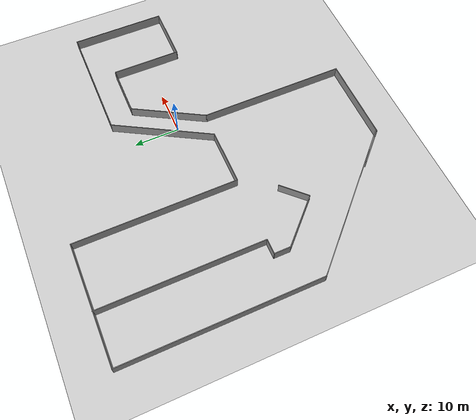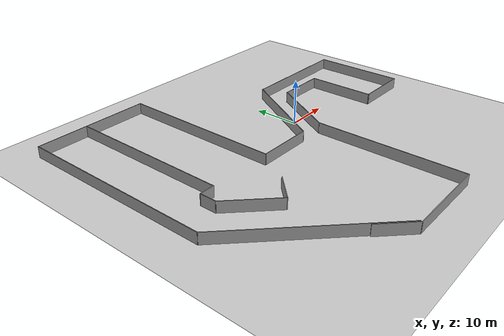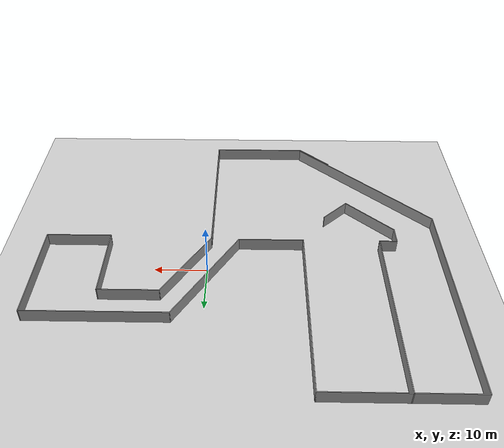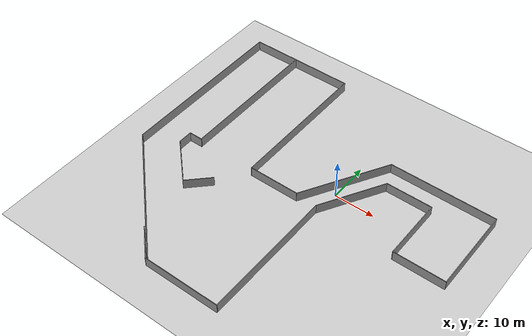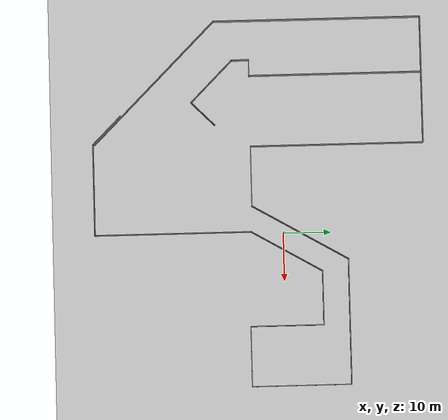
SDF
<sdf version="1.7">
 <world name="default">
  <light name="sun" type="directional">
   <pose>0 0 10 0 -0 0</pose>
   <diffuse>0.8 0.8 0.8 1</diffuse>
   <specular>0.2 0.2 0.2 1</specular>
   <attenuation>
    <range>1000</range>
    <constant>0.9</constant>
    <linear>0.01</linear>
    <quadratic>0.001</quadratic>
   </attenuation>
   <direction>-0.5 0.1 -0.9</direction>
   <spot><inner_angle>0</inner_angle><outer_angle>0</outer_angle><falloff>0</falloff></spot>
  </light>
  <model name="ground_plane">
   <static>1</static>
   <link name="link">
    <collision name="collision">
     <geometry><plane><normal>0 0 1</normal><size>100 100</size></plane></geometry>
     <surface>
      <contact><collide_bitmask>65535</collide_bitmask></contact>
      <friction><ode><mu>100</mu><mu2>50</mu2></ode></friction>
     </surface>
    </collision>
    <visual name="visual">
     <cast_shadows>0</cast_shadows>
     <geometry><plane><normal>0 0 1</normal><size>100 100</size></plane></geometry>
     <material>
      <script><uri>file://media/materials/scripts/gazebo.material</uri><name>Gazebo/Grey</name></script>
     </material>
    </visual>
   </link>
  </model>
  <gravity>0 0 -9.8</gravity>
  <magnetic_field>6e-06 2.3e-05 -4.2e-05</magnetic_field>
  <atmosphere type="adiabatic"/>
  <physics type="ode">
   <max_step_size>0.001</max_step_size>
   <real_time_factor>1</real_time_factor>
   <real_time_update_rate>1000</real_time_update_rate>
  </physics>
  <scene><ambient>0.4 0.4 0.4 1</ambient><background>0.7 0.7 0.7 1</background><shadows>1</shadows></scene>
  <spherical_coordinates>
   <surface_model>EARTH_WGS84</surface_model>
   <latitude_deg>0</latitude_deg>
   <longitude_deg>0</longitude_deg>
   <elevation>0</elevation>
   <heading_deg>0</heading_deg>
  </spherical_coordinates>
  <model name="Untitled">
   <pose>-5.95245 -4.8944 0 0 -0 0</pose>
   <link name="Wall_0">
    <collision name="Wall_0_Collision">
     <geometry><box><size>36.25 0.15 2.5</size></box></geometry>
     <pose>0 0 1.25 0 -0 0</pose>
    </collision>
    <visual name="Wall_0_Visual">
     <pose>0 0 1.25 0 -0 0</pose>
     <geometry><box><size>36.25 0.15 2.5</size></box></geometry>
     <material>
      <script><uri>file://media/materials/scripts/gazebo.material</uri><name>Gazebo/Grey</name></script>
      <ambient>1 1 1 1</ambient>
     </material>
     <meta><layer>0</layer></meta>
    </visual>
    <pose>-26.3666 -21.6203 0 0 -0 2.35619</pose>
   </link>
   <link name="Wall_1">
    <collision name="Wall_1_Collision">
     <geometry><box><size>43.75 0.15 2.5</size></box></geometry>
     <pose>0 0 1.25 0 -0 0</pose>
    </collision>
    <visual name="Wall_1_Visual">
     <pose>0 0 1.25 0 -0 0</pose>
     <geometry><box><size>43.75 0.15 2.5</size></box></geometry>
     <material>
      <script><uri>file://media/materials/scripts/gazebo.material</uri><name>Gazebo/Grey</name></script>
      <ambient>1 1 1 1</ambient>
     </material>
     <meta><layer>0</layer></meta>
    </visual>
    <pose>-39.1299 12.9429 0 0 -0 1.5708</pose>
   </link>
   <link name="Wall_10">
    <collision name="Wall_10_Collision">
     <geometry><box><size>11.5 0.15 2.5</size></box></geometry>
     <pose>0 0 1.25 0 -0 0</pose>
    </collision>
    <visual name="Wall_10_Visual">
     <pose>0 0 1.25 0 -0 0</pose>
     <geometry><box><size>11.5 0.15 2.5</size></box></geometry>
     <material>
      <script><uri>file://media/materials/scripts/gazebo.material</uri><name>Gazebo/Grey</name></script>
      <ambient>1 1 1 1</ambient>
     </material>
     <meta><layer>0</layer></meta>
    </visual>
    <pose>19.6951 12.8981 0 0 -0 3.14159</pose>
   </link>
   <link name="Wall_11">
    <collision name="Wall_11_Collision">
     <geometry><box><size>17.25 0.15 2.5</size></box></geometry>
     <pose>0 0 1.25 0 -0 0</pose>
    </collision>
    <visual name="Wall_11_Visual">
     <pose>0 0 1.25 0 -0 0</pose>
     <geometry><box><size>17.25 0.15 2.5</size></box></geometry>
     <material>
      <script><uri>file://media/materials/scripts/gazebo.material</uri><name>Gazebo/Grey</name></script>
      <ambient>1 1 1 1</ambient>
     </material>
     <meta><layer>0</layer></meta>
    </visual>
    <pose>9.74513 5.49362 0 0 -0 -2.0944</pose>
   </link>
   <link name="Wall_12">
    <collision name="Wall_12_Collision">
     <geometry><box><size>33 0.15 2.5</size></box></geometry>
     <pose>0 0 1.25 0 -0 0</pose>
    </collision>
    <visual name="Wall_12_Visual">
     <pose>0 0 1.25 0 -0 0</pose>
     <geometry><box><size>33 0.15 2.5</size></box></geometry>
     <material>
      <script><uri>file://media/materials/scripts/gazebo.material</uri><name>Gazebo/Grey</name></script>
      <ambient>1 1 1 1</ambient>
     </material>
     <meta><layer>0</layer></meta>
    </visual>
    <pose>5.47013 -18.3359 0 0 -0 -1.5708</pose>
   </link>
   <link name="Wall_13">
    <collision name="Wall_13_Collision">
     <geometry><box><size>19.25 0.15 2.5</size></box></geometry>
     <pose>0 0 1.25 0 -0 0</pose>
    </collision>
    <visual name="Wall_13_Visual">
     <pose>0 0 1.25 0 -0 0</pose>
     <geometry><box><size>19.25 0.15 2.5</size></box></geometry>
     <material>
      <script><uri>file://media/materials/scripts/gazebo.material</uri><name>Gazebo/Grey</name></script>
      <ambient>1 1 1 1</ambient>
     </material>
     <meta><layer>0</layer></meta>
    </visual>
    <pose>-4.07986 -34.7609 0 0 -0 3.14159</pose>
   </link>
   <link name="Wall_14">
    <collision name="Wall_14_Collision">
     <geometry><box><size>8.5 0.15 2.5</size></box></geometry>
     <pose>0 0 1.25 0 -0 0</pose>
    </collision>
    <visual name="Wall_14_Visual">
     <pose>0 0 1.25 0 -0 0</pose>
     <geometry><box><size>8.5 0.15 2.5</size></box></geometry>
     <material>
      <script><uri>file://media/materials/scripts/gazebo.material</uri><name>Gazebo/Grey</name></script>
      <ambient>1 1 1 1</ambient>
     </material>
     <meta><layer>0</layer></meta>
    </visual>
    <pose>-16.582 -31.8087 0 0 -0 2.35619</pose>
   </link>
   <link name="Wall_16">
    <collision name="Wall_16_Collision">
     <geometry><box><size>36.5 0.15 2.5</size></box></geometry>
     <pose>0 0 1.25 0 -0 0</pose>
    </collision>
    <visual name="Wall_16_Visual">
     <pose>0 0 1.25 0 -0 0</pose>
     <geometry><box><size>36.5 0.15 2.5</size></box></geometry>
     <material>
      <script><uri>file://media/materials/scripts/gazebo.material</uri><name>Gazebo/Grey</name></script>
      <ambient>1 1 1 1</ambient>
     </material>
     <meta><layer>0</layer></meta>
    </visual>
    <pose>-27.4522 16.617 0 0 -0 -1.5708</pose>
   </link>
   <link name="Wall_17">
    <collision name="Wall_17_Collision">
     <geometry><box><size>3.5 0.15 2.5</size></box></geometry>
     <pose>0 0 1.25 0 -0 0</pose>
    </collision>
    <visual name="Wall_17_Visual">
     <pose>0 0 1.25 0 -0 0</pose>
     <geometry><box><size>3.5 0.15 2.5</size></box></geometry>
     <material>
      <script><uri>file://media/materials/scripts/gazebo.material</uri><name>Gazebo/Grey</name></script>
      <ambient>1 1 1 1</ambient>
     </material>
     <meta><layer>0</layer></meta>
    </visual>
    <pose>-29.1272 -1.55804 0 0 -0 3.14159</pose>
   </link>
   <link name="Wall_18">
    <collision name="Wall_18_Collision">
     <geometry><box><size>3.75 0.15 2.5</size></box></geometry>
     <pose>0 0 1.25 0 -0 0</pose>
    </collision>
    <visual name="Wall_18_Visual">
     <pose>0 0 1.25 0 -0 0</pose>
     <geometry><box><size>3.75 0.15 2.5</size></box></geometry>
     <material>
      <script><uri>file://media/materials/scripts/gazebo.material</uri><name>Gazebo/Grey</name></script>
      <ambient>1 1 1 1</ambient>
     </material>
     <meta><layer>0</layer></meta>
    </visual>
    <pose>-30.8022 -3.35804 0 0 -0 -1.5708</pose>
   </link>
   <link name="Wall_19">
    <collision name="Wall_19_Collision">
     <geometry><box><size>12.5 0.15 2.5</size></box></geometry>
     <pose>0 0 1.25 0 -0 0</pose>
    </collision>
    <visual name="Wall_19_Visual">
     <pose>0 0 1.25 0 -0 0</pose>
     <geometry><box><size>12.5 0.15 2.5</size></box></geometry>
     <material>
      <script><uri>file://media/materials/scripts/gazebo.material</uri><name>Gazebo/Grey</name></script>
      <ambient>1 1 1 1</ambient>
     </material>
     <meta><layer>0</layer></meta>
    </visual>
    <pose>-26.4358 -9.52442 0 0 -0 -0.785398</pose>
   </link>
   <link name="Wall_2">
    <collision name="Wall_2_Collision">
     <geometry><box><size>26.75 0.15 2.5</size></box></geometry>
     <pose>0 0 1.25 0 -0 0</pose>
    </collision>
    <visual name="Wall_2_Visual">
     <pose>0 0 1.25 0 -0 0</pose>
     <geometry><box><size>26.75 0.15 2.5</size></box></geometry>
     <material>
      <script><uri>file://media/materials/scripts/gazebo.material</uri><name>Gazebo/Grey</name></script>
      <ambient>1 1 1 1</ambient>
     </material>
     <meta><layer>0</layer></meta>
    </visual>
    <pose>-25.8299 34.7429 0 0 -0 0</pose>
   </link>
   <link name="Wall_20">
    <collision name="Wall_20_Collision">
     <geometry><box><size>7 0.15 2.5</size></box></geometry>
     <pose>0 0 1.25 0 -0 0</pose>
    </collision>
    <visual name="Wall_20_Visual">
     <pose>0 0 1.25 0 -0 0</pose>
     <geometry><box><size>7 0.15 2.5</size></box></geometry>
     <material>
      <script><uri>file://media/materials/scripts/gazebo.material</uri><name>Gazebo/Grey</name></script>
      <ambient>1 1 1 1</ambient>
     </material>
     <meta><layer>0</layer></meta>
    </visual>
    <pose>-19.6476 -11.469 0 0 -0 0.785398</pose>
   </link>
   <link name="Wall_3">
    <collision name="Wall_3_Collision">
     <geometry><box><size>36.5 0.15 2.5</size></box></geometry>
     <pose>0 0 1.25 0 -0 0</pose>
    </collision>
    <visual name="Wall_3_Visual">
     <pose>0 0 1.25 0 -0 0</pose>
     <geometry><box><size>36.5 0.15 2.5</size></box></geometry>
     <material>
      <script><uri>file://media/materials/scripts/gazebo.material</uri><name>Gazebo/Grey</name></script>
      <ambient>1 1 1 1</ambient>
     </material>
     <meta><layer>0</layer></meta>
    </visual>
    <pose>-12.5299 16.5679 0 0 -0 -1.5708</pose>
   </link>
   <link name="Wall_4">
    <collision name="Wall_4_Collision">
     <geometry><box><size>12.75 0.15 2.5</size></box></geometry>
     <pose>0 0 1.25 0 -0 0</pose>
    </collision>
    <visual name="Wall_4_Visual">
     <pose>0 0 1.25 0 -0 0</pose>
     <geometry><box><size>12.75 0.15 2.5</size></box></geometry>
     <material>
      <script><uri>file://media/materials/scripts/gazebo.material</uri><name>Gazebo/Grey</name></script>
      <ambient>1 1 1 1</ambient>
     </material>
     <meta><layer>0</layer></meta>
    </visual>
    <pose>-6.22987 -1.60705 0 0 -0 0</pose>
   </link>
   <link name="Wall_5">
    <collision name="Wall_5_Collision">
     <geometry><box><size>23.25 0.15 2.5</size></box></geometry>
     <pose>0 0 1.25 0 -0 0</pose>
    </collision>
    <visual name="Wall_5_Visual">
     <pose>0 0 1.25 0 -0 0</pose>
     <geometry><box><size>23.25 0.15 2.5</size></box></geometry>
     <material>
      <script><uri>file://media/materials/scripts/gazebo.material</uri><name>Gazebo/Grey</name></script>
      <ambient>1 1 1 1</ambient>
     </material>
     <meta><layer>0</layer></meta>
    </visual>
    <pose>5.84513 8.39554 0 0 -0 1.0472</pose>
   </link>
   <link name="Wall_6">
    <collision name="Wall_6_Collision">
     <geometry><box><size>26.5 0.15 2.5</size></box></geometry>
     <pose>0 0 1.25 0 -0 0</pose>
    </collision>
    <visual name="Wall_6_Visual">
     <pose>0 0 1.25 0 -0 0</pose>
     <geometry><box><size>26.5 0.15 2.5</size></box></geometry>
     <material>
      <script><uri>file://media/materials/scripts/gazebo.material</uri><name>Gazebo/Grey</name></script>
      <ambient>1 1 1 1</ambient>
     </material>
     <meta><layer>0</layer></meta>
    </visual>
    <pose>24.7951 18.3981 0 0 -0 0</pose>
   </link>
   <link name="Wall_7">
    <collision name="Wall_7_Collision">
     <geometry><box><size>21 0.15 2.5</size></box></geometry>
     <pose>0 0 1.25 0 -0 0</pose>
    </collision>
    <visual name="Wall_7_Visual">
     <pose>0 0 1.25 0 -0 0</pose>
     <geometry><box><size>21 0.15 2.5</size></box></geometry>
     <material>
      <script><uri>file://media/materials/scripts/gazebo.material</uri><name>Gazebo/Grey</name></script>
      <ambient>1 1 1 1</ambient>
     </material>
     <meta><layer>0</layer></meta>
    </visual>
    <pose>37.9701 7.97314 0 0 -0 -1.5708</pose>
   </link>
   <link name="Wall_8">
    <collision name="Wall_8_Collision">
     <geometry><box><size>12.75 0.15 2.5</size></box></geometry>
     <pose>0 0 1.25 0 -0 0</pose>
    </collision>
    <visual name="Wall_8_Visual">
     <pose>0 0 1.25 0 -0 0</pose>
     <geometry><box><size>12.75 0.15 2.5</size></box></geometry>
     <material>
      <script><uri>file://media/materials/scripts/gazebo.material</uri><name>Gazebo/Grey</name></script>
      <ambient>1 1 1 1</ambient>
     </material>
     <meta><layer>0</layer></meta>
    </visual>
    <pose>31.6701 -2.45186 0 0 -0 3.14159</pose>
   </link>
   <link name="Wall_9">
    <collision name="Wall_9_Collision">
     <geometry><box><size>15.5 0.15 2.5</size></box></geometry>
     <pose>0 0 1.25 0 -0 0</pose>
    </collision>
    <visual name="Wall_9_Visual">
     <pose>0 0 1.25 0 -0 0</pose>
     <geometry><box><size>15.5 0.15 2.5</size></box></geometry>
     <material>
      <script><uri>file://media/materials/scripts/gazebo.material</uri><name>Gazebo/Grey</name></script>
      <ambient>1 1 1 1</ambient>
     </material>
     <meta><layer>0</layer></meta>
    </visual>
    <pose>25.3701 5.22314 0 0 -0 1.5708</pose>
   </link>
   <static>1</static>
  </model>
 </world>
</sdf>
